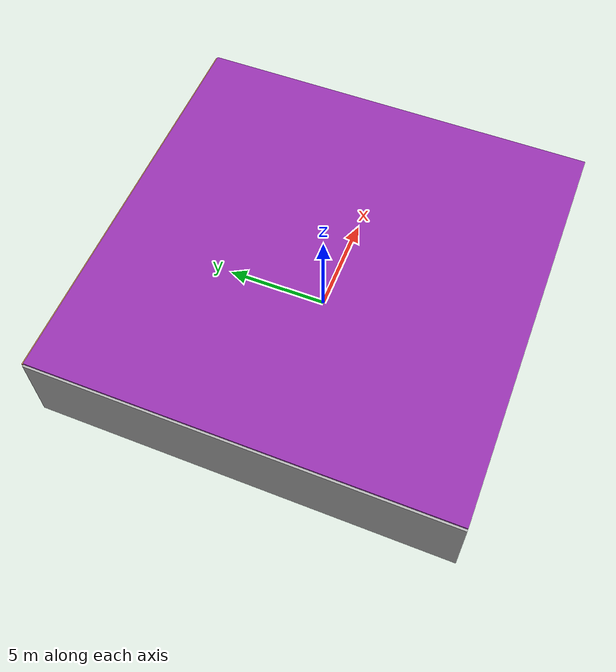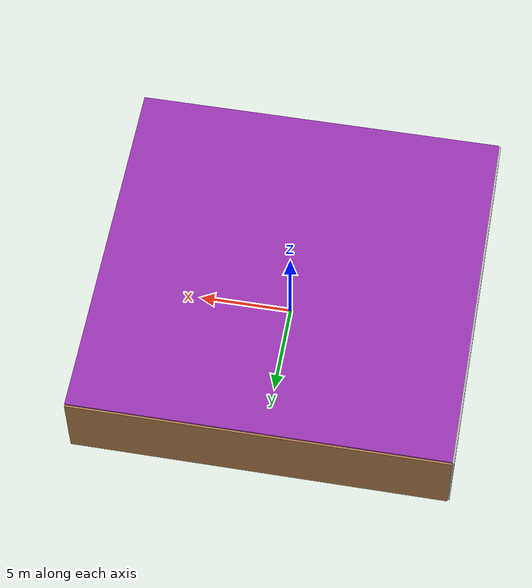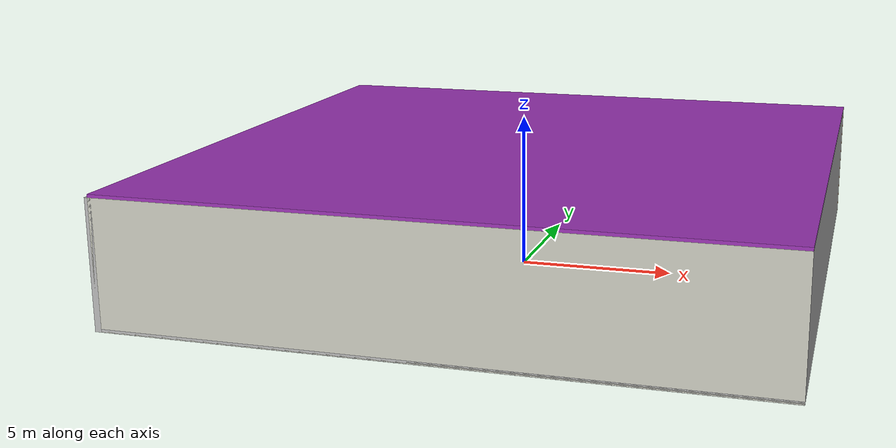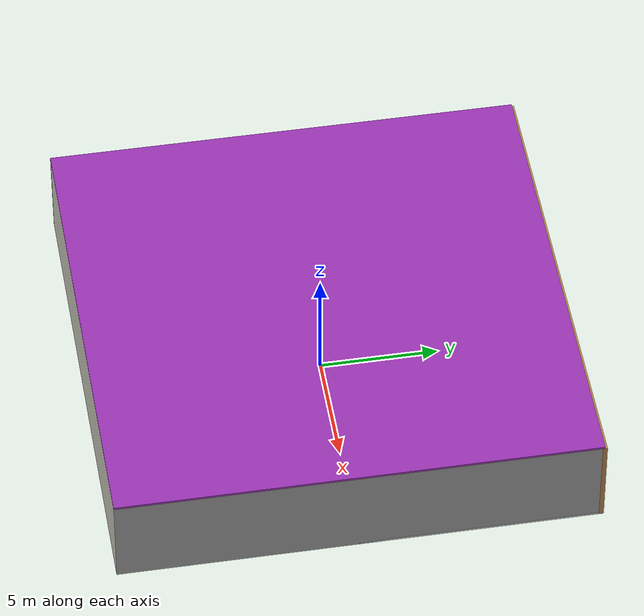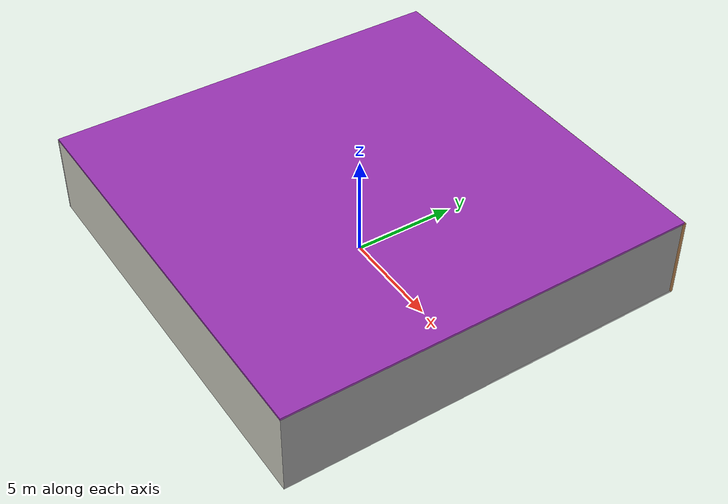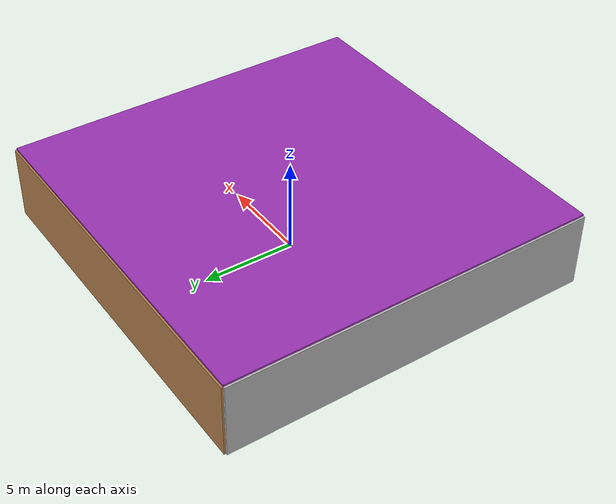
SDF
<sdf version="1.4">
 <world name="default">
  <physics type="ode">
   <max_step_size>0.001</max_step_size>
   <real_time_factor>1</real_time_factor>
   <real_time_update_rate>1000</real_time_update_rate>
   <gravity>0 0 -9.8</gravity>
  </physics>
  <scene><ambient>0.4 0.4 0.4 1</ambient><background>0.7 0.7 0.7 1</background><shadows>1</shadows></scene>
  <model name="Surrounding">
   <static>1</static>
   <link name="Ceiling">
    <collision name="Ceiling_Collision"><geometry><box><size>20 20 0.1</size></box></geometry></collision>
    <visual name="Ceiling_Visual">
     <geometry><box><size>20 20 0.1</size></box></geometry>
     <material>
      <script><uri>file://media/materials/scripts/gazebo.material</uri><name>Gazebo/Purple</name></script>
     </material>
    </visual>
    <pose>0 0 4.05 0 0 0</pose>
   </link>
   <link name="Wall_South">
    <collision name="Wall_South_Collision">
     <geometry><box><size>20 0 4</size></box></geometry>
     <pose>0 0 2 0 -0 0</pose>
    </collision>
    <visual name="Wall_South_Visual">
     <pose>0 0 2 0 -0 0</pose>
     <geometry><box><size>20 0 4</size></box></geometry>
     <material>
      <script><uri>file://media/materials/scripts/gazebo.material</uri><name>Gazebo/PaintedWall</name></script>
     </material>
    </visual>
    <velocity_decay><linear>0</linear><angular>0</angular></velocity_decay>
    <pose>0 -10 0 0 -0 0</pose>
   </link>
   <link name="Wall_East">
    <collision name="Wall_21_Collision">
     <geometry><box><size>20 0 4</size></box></geometry>
     <pose>0 0 2 0 -0 0</pose>
    </collision>
    <visual name="Wall_21_Visual">
     <pose>0 0 2 0 -0 0</pose>
     <geometry><box><size>20 0 4</size></box></geometry>
     <material>
      <script><uri>file://media/materials/scripts/gazebo.material</uri><name>Gazebo/GreyGradientSky</name></script>
     </material>
    </visual>
    <velocity_decay><linear>0</linear><angular>0</angular></velocity_decay>
    <pose>10 0 0 0 -0 1.5708</pose>
   </link>
   <link name="Wall_North">
    <collision name="Wall_22_Collision">
     <geometry><box><size>20 0.2 4</size></box></geometry>
     <pose>0 0 2 0 -0 0</pose>
    </collision>
    <visual name="Wall_22_Visual">
     <pose>0 0 2 0 -0 0</pose>
     <geometry><box><size>20 0.2 4</size></box></geometry>
     <material>
      <script><uri>file://media/materials/scripts/gazebo.material</uri><name>Gazebo/WoodPallet</name></script>
     </material>
    </visual>
    <velocity_decay><linear>0</linear><angular>0</angular></velocity_decay>
    <pose>0 10 0 0 -0 0</pose>
   </link>
   <link name="Wall_West">
    <collision name="Wall_23_Collision">
     <geometry><box><size>20 0.2 4</size></box></geometry>
     <pose>0 0 2 0 -0 0</pose>
    </collision>
    <visual name="Wall_23_Visual">
     <pose>0 0 2 0 -0 0</pose>
     <geometry><box><size>20 0.2 4</size></box></geometry>
     <material>
      <script><uri>file://media/materials/scripts/gazebo.material</uri><name>Gazebo/LightOn</name></script>
     </material>
    </visual>
    <velocity_decay><linear>0</linear><angular>0</angular></velocity_decay>
    <pose>-10 0 0 0 0 -1.5708</pose>
   </link>
   <link name="Ground_link">
    <collision name="collision">
     <pose>0 0 .05 0 -0 0</pose>
     <geometry><box><size>20 20 0.1</size></box></geometry>
    </collision>
    <visual name="visual">
     <pose>0 0 .05 0 -0 0</pose>
     <geometry><box><size>20 20 0.1</size></box></geometry>
     <material>
      <script><uri>file://media/materials/scripts/gazebo.material</uri><name>Gazebo/JointAnchor</name></script>
     </material>
    </visual>
   </link>
   <static>1</static>
  </model>
  <spherical_coordinates>
   <surface_model>EARTH_WGS84</surface_model>
   <latitude_deg>0</latitude_deg>
   <longitude_deg>0</longitude_deg>
   <elevation>0</elevation>
   <heading_deg>0</heading_deg>
  </spherical_coordinates>
  <light name="lightball_0" type="diffuse">
   <diffuse>0.8 0.8 0.8 1</diffuse>
   <specular>0.2 0.2 0.2 1</specular>
   <attenuation>
    <range>100</range>
    <constant>0.7</constant>
    <linear>0.01</linear>
    <quadratic>0.001</quadratic>
   </attenuation>
   <direction>-0.5 0.1 -0.9</direction>
   <pose>5.75896375292 7.81418016954 3.73837897154 0 0 0</pose>
  </light>
  <light name="lightball_1" type="diffuse">
   <diffuse>0.8 0.8 0.8 1</diffuse>
   <specular>0.2 0.2 0.2 1</specular>
   <attenuation>
    <range>100</range>
    <constant>0.7</constant>
    <linear>0.01</linear>
    <quadratic>0.001</quadratic>
   </attenuation>
   <direction>-0.5 0.1 -0.9</direction>
   <pose>-7.42201294749 7.71710537339 1.97176992977 0 0 0</pose>
  </light>
  <light name="lightball_2" type="diffuse">
   <diffuse>0.8 0.8 0.8 1</diffuse>
   <specular>0.2 0.2 0.2 1</specular>
   <attenuation>
    <range>100</range>
    <constant>0.7</constant>
    <linear>0.01</linear>
    <quadratic>0.001</quadratic>
   </attenuation>
   <direction>-0.5 0.1 -0.9</direction>
   <pose>6.53181793155 5.04502629281 2.82212418115 0 0 0</pose>
  </light>
  <light name="lightball_3" type="diffuse">
   <diffuse>0.8 0.8 0.8 1</diffuse>
   <specular>0.2 0.2 0.2 1</specular>
   <attenuation>
    <range>100</range>
    <constant>0.7</constant>
    <linear>0.01</linear>
    <quadratic>0.001</quadratic>
   </attenuation>
   <direction>-0.5 0.1 -0.9</direction>
   <pose>2.94072496147 -5.0276109498 0.672708482 0 0 0</pose>
  </light>
  <light name="lightball_4" type="diffuse">
   <diffuse>0.8 0.8 0.8 1</diffuse>
   <specular>0.2 0.2 0.2 1</specular>
   <attenuation>
    <range>100</range>
    <constant>0.7</constant>
    <linear>0.01</linear>
    <quadratic>0.001</quadratic>
   </attenuation>
   <direction>-0.5 0.1 -0.9</direction>
   <pose>1.58259114362 -7.74775915276 1.40316642197 0 0 0</pose>
  </light>
  <light name="lightball_5" type="diffuse">
   <diffuse>0.8 0.8 0.8 1</diffuse>
   <specular>0.2 0.2 0.2 1</specular>
   <attenuation>
    <range>100</range>
    <constant>0.7</constant>
    <linear>0.01</linear>
    <quadratic>0.001</quadratic>
   </attenuation>
   <direction>-0.5 0.1 -0.9</direction>
   <pose>-2.2589424505 -6.633671883 2.54924138063 0 0 0</pose>
  </light>
  <light name="lightball_6" type="diffuse">
   <diffuse>0.8 0.8 0.8 1</diffuse>
   <specular>0.2 0.2 0.2 1</specular>
   <attenuation>
    <range>100</range>
    <constant>0.7</constant>
    <linear>0.01</linear>
    <quadratic>0.001</quadratic>
   </attenuation>
   <direction>-0.5 0.1 -0.9</direction>
   <pose>-5.62306218692 -2.63316645031 0.598500834284 0 0 0</pose>
  </light>
  <include>
   <uri>model://construction_cone</uri>
   <pose>-4.01480899806 1.80389142695 0 0 0 1.45746028548</pose>
  </include>
  <include>
   <uri>model://robocup_3Dsim_goal</uri>
   <pose>-1.90636585692 -6.87189529365 0 0 0 1.03634104128</pose>
  </include>
  <include>
   <uri>model://textured_shapes</uri>
   <pose>-1.65604300504 -3.86602865769 0 0 0 2.61849180411</pose>
  </include>
  <include><uri>model://cabinet</uri><pose>-2.08720233985 4.16374378271 0 0 0 1.31980986344</pose></include>
  <include><uri>model://cabinet</uri><pose>1.11484139573 -3.75161066974 0 0 0 2.79007118232</pose></include>
  <include><uri>model://cabinet</uri><pose>8.28269513498 -8.25541971362 0 0 0 0.385825909976</pose></include>
 </world>
</sdf>

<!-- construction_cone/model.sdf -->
<sdf version="1.5">
  <model name="Construction Cone">
    <link name="link">
      <collision name="collision">
        <geometry>
          <mesh>
            <scale>10 10 10</scale>
            <uri>file://isr-testbed/construction_cone/meshes/construction_cone.dae</uri>
          </mesh>
        </geometry>
      </collision>
      <visual name="visual">
        <geometry>
          <mesh>
            <scale>10 10 10</scale>
            <uri>file://isr-testbed/construction_cone/meshes/construction_cone.dae</uri>
          </mesh>
        </geometry>
      </visual>
    </link>
  </model>
</sdf>

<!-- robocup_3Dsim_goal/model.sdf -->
<sdf version="1.5">
  <model name="robocup_3d_goal">
    <static>true</static>
    <link name="left_post">
      <pose>0 1.05 0.45 0 0 0</pose>
      <collision name="collision">
        <geometry>
          <cylinder>
            <radius>0.05</radius>
            <length>0.9</length>
          </cylinder>
        </geometry>
      </collision>
      <visual name="visual">
        <geometry>
          <cylinder>
            <radius>0.05</radius>
            <length>0.9</length>
          </cylinder>
        </geometry>
        <material>
          <script>
            <uri>file://media/materials/scripts/gazebo.material</uri>
            <name>Gazebo/ZincYellow</name>
          </script>
        </material>
      </visual>
    </link>
    <link name="left_support_horiz_lower">
      <pose>0.30 1.05 0.01 0 0 0</pose>
      <collision name="collision">
        <geometry>
          <box>
            <size>0.50 0.02 0.02</size>
          </box>
        </geometry>
      </collision>
      <visual name="visual">
        <geometry>
          <box>
            <size>0.50 0.02 0.02</size>
          </box>
        </geometry>
        <material>
          <script>
            <uri>file://media/materials/scripts/gazebo.material</uri>
            <name>Gazebo/White</name>
          </script>
        </material>
      </visual>
    </link>
    <link name="left_support_horiz_upper">
      <pose>0.30 1.05 0.79 0 0 0</pose>
      <collision name="collision">
        <geometry>
          <box>
            <size>0.50 0.02 0.02</size>
          </box>
        </geometry>
      </collision>
      <visual name="visual">
        <geometry>
          <box>
            <size>0.50 0.02 0.02</size>
          </box>
        </geometry>
        <material>
          <script>
            <uri>file://media/materials/scripts/gazebo.material</uri>
            <name>Gazebo/White</name>
          </script>
        </material>
      </visual>
    </link>
    <link name="left_support_vertical">
      <pose>0.56 1.05 0.4 0 1.5708 0</pose>
      <collision name="collision">
        <geometry>
          <box>
            <size>0.80 0.02 0.02</size>
          </box>
        </geometry>
      </collision>
      <visual name="visual">
        <geometry>
          <box>
            <size>0.80 0.02 0.02</size>
          </box>
        </geometry>
        <material>
          <script>
            <uri>file://media/materials/scripts/gazebo.material</uri>
            <name>Gazebo/White</name>
          </script>
        </material>
      </visual>
    </link>
    <link name="right_support_horiz_lower">
      <pose>0.30 -1.05 0.01 0 0 0</pose>
      <collision name="collision">
        <geometry>
          <box>
            <size>0.50 0.02 0.02</size>
          </box>
        </geometry>
      </collision>
      <visual name="visual">
        <geometry>
          <box>
            <size>0.50 0.02 0.02</size>
          </box>
        </geometry>
        <material>
          <script>
            <uri>file://media/materials/scripts/gazebo.material</uri>
            <name>Gazebo/White</name>
          </script>
        </material>
      </visual>
    </link>
    <link name="right_support_horiz_upper">
      <pose>0.30 -1.05 0.79 0 0 0</pose>
      <collision name="collision">
        <geometry>
          <box>
            <size>0.50 0.02 0.02</size>
          </box>
        </geometry>
      </collision>
      <visual name="visual">
        <geometry>
          <box>
            <size>0.50 0.02 0.02</size>
          </box>
        </geometry>
        <material>
          <script>
            <uri>file://media/materials/scripts/gazebo.material</uri>
            <name>Gazebo/White</name>
          </script>
        </material>
      </visual>
    </link>
    <link name="right_support_vertical">
      <pose>0.56 -1.05 0.4 0 1.5708 0</pose>
      <collision name="collision">
        <geometry>
          <box>
            <size>0.80 0.02 0.02</size>
          </box>
        </geometry>
      </collision>
      <visual name="visual">
        <geometry>
          <box>
            <size>0.80 0.02 0.02</size>
          </box>
        </geometry>
        <material>
          <script>
            <uri>file://media/materials/scripts/gazebo.material</uri>
            <name>Gazebo/White</name>
          </script>
        </material>
      </visual>
    </link>
    <link name="center_support_horiz_lower">
      <pose>0.56 0 0.01 0 1.5708 0</pose>
      <collision name="collision">
        <geometry>
          <box>
            <size>0.02 2.08 0.02</size>
          </box>
        </geometry>
      </collision>
      <visual name="visual">
        <geometry>
          <box>
            <size>0.02 2.08 0.02</size>
          </box>
        </geometry>
        <material>
          <script>
            <uri>file://media/materials/scripts/gazebo.material</uri>
            <name>Gazebo/White</name>
          </script>
        </material>
      </visual>
    </link>
    <link name="center_support_horiz_upper">
      <pose>0.56 0 0.79 0 1.5708 0</pose>
      <collision name="collision">
        <geometry>
          <box>
            <size>0.02 2.08 0.02</size>
          </box>
        </geometry>
      </collision>
      <visual name="visual">
        <geometry>
          <box>
            <size>0.02 2.08 0.02</size>
          </box>
        </geometry>
        <material>
          <script>
            <uri>file://media/materials/scripts/gazebo.material</uri>
            <name>Gazebo/White</name>
          </script>
        </material>
      </visual>
    </link>
    <link name="right_post">
      <pose>0 -1.05 0.45 0 0 0</pose>
      <collision name="collision">
        <geometry>
          <cylinder>
            <radius>0.05</radius>
            <length>0.9</length>
          </cylinder>
        </geometry>
      </collision>
      <visual name="visual">
        <geometry>
          <cylinder>
            <radius>0.05</radius>
            <length>0.9</length>
          </cylinder>
        </geometry>
        <material>
          <script>
            <uri>file://media/materials/scripts/gazebo.material</uri>
            <name>Gazebo/ZincYellow</name>
          </script>
        </material>
      </visual>
    </link>
    <link name="crossbar">
      <pose>0 0 0.85 1.57 1.57 0</pose>
      <collision name="collision">
        <geometry>
          <cylinder>
            <radius>0.05</radius>
            <length>2.0</length>
          </cylinder>
        </geometry>
      </collision>
      <visual name="visual">
        <geometry>
          <cylinder>
            <radius>0.05</radius>
            <length>2.0</length>
          </cylinder>
        </geometry>
        <material>
          <script>
            <uri>file://media/materials/scripts/gazebo.material</uri>
            <name>Gazebo/ZincYellow</name>
          </script>
        </material>
      </visual>
    </link>
    <link name="center_net">
      <pose>0.56 0 0.40 0 0 0</pose>
      <collision name="collision">
        <geometry>
          <box>
            <size>0.01 2.1 0.80</size>
          </box>
        </geometry>
      </collision>
      <visual name="visual">
        <geometry>
          <box>
            <size>0.01 2.1 0.80</size>
          </box>
        </geometry>
        <material>
          <script>
            <uri>model://../model_source/models/robocup09_spl_field/materials/scripts/</uri>
            <uri>model://../model_source/models/robocup09_spl_field/materials/textures/</uri>
            <name>RoboCup/Net</name>
          </script>
        </material>
      </visual>
    </link>
    <link name="left_net">
      <pose>0.30 1.05 0.40 0 0 0</pose>
      <collision name="collision">
        <geometry>
          <box>
            <size>0.50 0.01 0.76</size>
          </box>
        </geometry>
      </collision>
      <visual name="visual">
        <geometry>
          <box>
            <size>0.50 0.01 0.76</size>
          </box>
        </geometry>
        <material>
          <script>
            <uri>model://../model_source/models/robocup09_spl_field/materials/scripts/</uri>
            <uri>model://../model_source/models/robocup09_spl_field/materials/textures/</uri>
            <name>RoboCup/Net</name>
          </script>
        </material>
      </visual>
    </link>
    <link name="right_net">
      <pose>0.30 -1.05 0.40 0 0 0</pose>
      <collision name="collision">
        <geometry>
          <box>
            <size>0.50 0.01 0.76</size>
          </box>
        </geometry>
      </collision>
      <visual name="visual">
        <geometry>
          <box>
            <size>0.50 0.01 0.76</size>
          </box>
        </geometry>
        <material>
          <script>
            <uri>model://../model_source/models/robocup09_spl_field/materials/scripts/</uri>
            <uri>model://../model_source/models/robocup09_spl_field/materials/textures/</uri>
            <name>RoboCup/Net</name>
          </script>
        </material>
      </visual>
    </link>
  </model>
</sdf>

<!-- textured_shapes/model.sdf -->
<sdf version="1.6">
  <model name="textured_shapes">
    <pose>0 0 0.5 0 0 0</pose>
    <link name="box">
      <pose>0 -1.5 0 0 0 0</pose>
      <collision name="collision">
        <geometry>
          <box>
            <size>1 1 1</size>
          </box>
        </geometry>
      </collision>
      <visual name="visual">
        <geometry>
          <box>
            <size>1 1 1</size>
          </box>
        </geometry>
        <material>
          <script>
            <uri>model://../model_source/models/textured_shapes/materials/scripts</uri>
            <uri>model://../model_source/models/textured_shapes/materials/textures</uri>
            <name>TexturedShape/Squares</name>
          </script>
        </material>
      </visual>
    </link>
    <link name="sphere">
      <collision name="collision">
        <geometry>
          <sphere>
            <radius>0.5</radius>
          </sphere>
        </geometry>
      </collision>
      <visual name="visual">
        <geometry>
          <sphere>
            <radius>0.5</radius>
          </sphere>
        </geometry>
        <material>
          <script>
            <uri>model://../model_source/models/textured_shapes/materials/scripts</uri>
            <uri>model://../model_source/models/textured_shapes/materials/textures</uri>
            <name>TexturedShape/Squares</name>
          </script>
        </material>
      </visual>
    </link>
    <link name="cylinder">
      <pose>0 1.5 0 0 0 0</pose>
      <collision name="collision">
        <geometry>
          <cylinder>
            <radius>0.5</radius>
            <length>1</length>
          </cylinder>
        </geometry>
      </collision>
      <visual name="visual">
        <geometry>
          <cylinder>
            <radius>0.5</radius>
            <length>1</length>
          </cylinder>
        </geometry>
        <material>
          <script>
            <uri>model://../model_source/models/textured_shapes/materials/scripts</uri>
            <uri>model://../model_source/models/textured_shapes/materials/textures</uri>
            <name>TexturedShape/Squares</name>
          </script>
        </material>
      </visual>
    </link>
  </model>
</sdf>

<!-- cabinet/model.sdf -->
<sdf version="1.5">
  <model name="cabinet">
    <static>true</static>
    <link name="cabinet_bottom_plate">
      <inertial>
        <pose>0 0 -1 0 0 0</pose>
        <inertia>
          <ixx>2.050000</ixx>
          <ixy>0</ixy>
          <ixz>0</ixz>
          <iyy>2.050000</iyy>
          <iyz>0</iyz>
          <izz>2.050000</izz>
        </inertia>
        <mass>25.000000</mass>
      </inertial>
      <collision name="cabinet_bottom_plate_geom">
        <pose>0 0 0.010000 0 0 0</pose>
        <geometry>
          <box>
            <size>0.450000 0.450000 0.020000</size>
          </box>
        </geometry>
      </collision>
      <visual name="cabinet_bottom_plate_geom_visual">
        <pose>0 0 0.010000 0 0 0</pose>
        <geometry>
          <box>
            <size>0.450000 0.450000 0.020000</size>
          </box>
        </geometry>
        <material>
          <script>
            <uri>model://media/materials/scripts/gazebo.material</uri>
            <name>Gazebo/Wood</name>
          </script>
        </material>
      </visual>
      <collision name="cabinet_bottom_plate_geom_cabinet_back_plate">
        <pose>0.235000 0 0.510000 0 0 0</pose>
        <geometry>
          <box>
            <size>0.020000 0.450000 1.020000</size>
          </box>
        </geometry>
      </collision>
      <visual name="cabinet_bottom_plate_geom_cabinet_back_plate_visual">
        <pose>0.235000 0 0.510000 0 0 0</pose>
        <geometry>
          <box>
            <size>0.020000 0.450000 1.020000</size>
          </box>
        </geometry>
        <material>
          <script>
            <uri>model://media/materials/scripts/gazebo.material</uri>
            <name>Gazebo/Wood</name>
          </script>
        </material>
      </visual>
      <collision name="cabinet_bottom_plate_geom_cabinet_left_plate">
        <pose>0 0.235000 0.510000 0 0 0</pose>
        <geometry>
          <box>
            <size>0.450000 0.020000 1.020000</size>
          </box>
        </geometry>
      </collision>
      <visual name="cabinet_bottom_plate_geom_cabinet_left_plate_visual">
        <pose>0 0.235000 0.510000 0 0 0</pose>
        <geometry>
          <box>
            <size>0.450000 0.020000 1.020000</size>
          </box>
        </geometry>
        <material>
          <script>
            <uri>model://media/materials/scripts/gazebo.material</uri>
            <name>Gazebo/Wood</name>
          </script>
        </material>
      </visual>
      <collision name="cabinet_bottom_plate_geom_cabinet_middle_plate">
        <pose>0 0 0.510000 0 0 0</pose>
        <geometry>
          <box>
            <size>0.450000 0.450000 0.020000</size>
          </box>
        </geometry>
      </collision>
      <visual name="cabinet_bottom_plate_geom_cabinet_middle_plate_visual">
        <pose>0 0 0.510000 0 0 0</pose>
        <geometry>
          <box>
            <size>0.450000 0.450000 0.020000</size>
          </box>
        </geometry>
        <material>
          <script>
            <uri>model://media/materials/scripts/gazebo.material</uri>
            <name>Gazebo/Wood</name>
          </script>
        </material>
      </visual>
      <collision name="cabinet_bottom_plate_geom_cabinet_right_plate">
        <pose>0 -0.235000 0.510000 0 0 0</pose>
        <geometry>
          <box>
            <size>0.450000 0.020000 1.020000</size>
          </box>
        </geometry>
      </collision>
      <visual name="cabinet_bottom_plate_geom_cabinet_right_plate_visual">
        <pose>0 -0.235000 0.510000 0 0 0</pose>
        <geometry>
          <box>
            <size>0.450000 0.020000 1.020000</size>
          </box>
        </geometry>
        <material>
          <script>
            <uri>model://media/materials/scripts/gazebo.material</uri>
            <name>Gazebo/Wood</name>
          </script>
        </material>
      </visual>
      <collision name="cabinet_bottom_plate_geom_cabinet_top_plate">
        <pose>0 0 1.010000 0 0 0</pose>
        <geometry>
          <box>
            <size>0.450000 0.450000 0.020000</size>
          </box>
        </geometry>
      </collision>
      <visual name="cabinet_bottom_plate_geom_cabinet_top_plate_visual">
        <pose>0 0 1.010000 0 0 0</pose>
        <geometry>
          <box>
            <size>0.450000 0.450000 0.020000</size>
          </box>
        </geometry>
        <material>
          <script>
            <uri>model://media/materials/scripts/gazebo.material</uri>
            <name>Gazebo/Wood</name>
          </script>
        </material>
      </visual>
    </link>
  </model>
</sdf>
